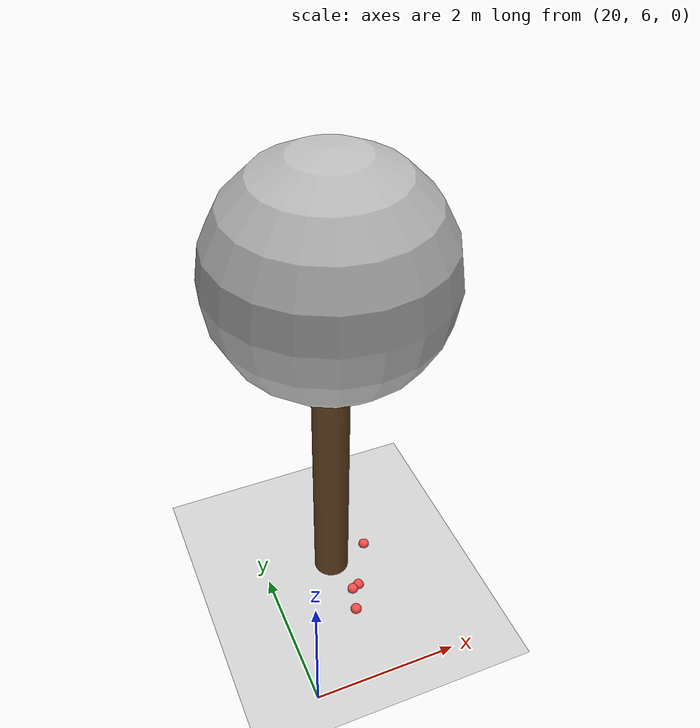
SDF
<sdf version="1.7">
 <world name="default">
  <model name="ground_plane">
   <static>1</static>
   <link name="link">
    <collision name="collision">
     <geometry><plane><normal>0 0 1</normal><size>100 100</size></plane></geometry>
     <surface>
      <contact><collide_bitmask>65535</collide_bitmask></contact>
      <friction><ode><mu>100</mu><mu2>50</mu2></ode></friction>
     </surface>
    </collision>
    <visual name="visual">
     <cast_shadows>0</cast_shadows>
     <geometry><plane><normal>0 0 1</normal><size>100 100</size></plane></geometry>
     <material>
      <script><uri>file://media/materials/scripts/gazebo.material</uri><name>Gazebo/Grey</name></script>
     </material>
    </visual>
   </link>
  </model>
  <model name="tree_simple_75">
   <static>1</static>
   <link name="link">
    <pose>0 0 0.1 0 -0 0</pose>
    <inertial>
     <mass>666</mass>
     <inertia>
      <ixx>0.0861167</ixx>
      <ixy>0</ixy>
      <ixz>0</ixz>
      <iyy>0.0861167</iyy>
      <iyz>0</iyz>
      <izz>0.0861167</izz>
     </inertia>
    </inertial>
    <collision name="collision_trunk">
     <pose>0 0 2 0 -0 0</pose>
     <geometry><cylinder><radius>0.25</radius><length>4</length></cylinder></geometry>
     <surface>
      <contact>
       <poissons_ratio>0.347</poissons_ratio>
       <elastic_modulus>8.8e+09</elastic_modulus>
       <ode><kp>100000</kp><kd>100</kd><max_vel>100</max_vel><min_depth>0.001</min_depth></ode>
      </contact>
      <friction>
       <torsional>
        <coefficient>1</coefficient>
        <use_patch_radius>0</use_patch_radius>
        <surface_radius>0.01</surface_radius>
       </torsional>
      </friction>
     </surface>
    </collision>
    <collision name="collision_treetop">
     <pose>0 0 5.2 0 -0 0</pose>
     <geometry><sphere><radius>1.5</radius></sphere></geometry>
     <surface>
      <contact>
       <poissons_ratio>0.347</poissons_ratio>
       <elastic_modulus>8.8e+09</elastic_modulus>
       <ode><kp>100000</kp><kd>100</kd><max_vel>100</max_vel><min_depth>0.001</min_depth></ode>
      </contact>
      <friction>
       <torsional>
        <coefficient>1</coefficient>
        <use_patch_radius>0</use_patch_radius>
        <surface_radius>0.01</surface_radius>
       </torsional>
      </friction>
     </surface>
    </collision>
    <visual name="trunk">
     <pose>0 0 2 0 -0 0</pose>
     <geometry><cylinder><radius>0.25</radius><length>4</length></cylinder></geometry>
     <material>
      <script>
       <uri>model://tree_simple/scripts</uri>
       <uri>model://tree_simple/materials/textures</uri>
       <name>TreeSimple/Trunk</name>
      </script>
     </material>
    </visual>
    <visual name="treetop">
     <pose>0 0 5.2 0 -0 0</pose>
     <geometry><sphere><radius>1.5</radius></sphere></geometry>
     <material>
      <script>
       <uri>model://tree_simple/scripts</uri>
       <uri>model://tree_simple/materials/textures</uri>
       <name>TreeSimple/Treetop</name>
      </script>
     </material>
    </visual>
   </link>
   <pose>21 8 -0.1 0 -0 0</pose>
  </model>
  <model name="seed_red_300">
   <link name="link">
    <inertial>
     <mass>1</mass>
     <inertia><ixx>0.1</ixx><ixy>0</ixy><ixz>0</ixz><iyy>0.1</iyy><iyz>0</iyz><izz>0.1</izz></inertia>
    </inertial>
    <visual name="visual">
     <geometry><sphere><radius>0.08</radius></sphere></geometry>
     <material>
      <script><name>Gazebo/Grey</name><uri>file://media/materials/scripts/gazebo.material</uri></script>
      <shader type="pixel"><normal_map>__default__</normal_map></shader>
      <ambient>1 0.3 0.3 1</ambient>
      <diffuse>0.7 0.7 0.7 1</diffuse>
      <specular>0.01 0.01 0.01 1</specular>
      <emissive>0 0 0 1</emissive>
     </material>
    </visual>
    <collision name="collision">
     <geometry><sphere><radius>0.0005</radius></sphere></geometry>
     <surface>
      <friction>
       <ode><mu>1</mu><mu2>1</mu2><fdir1>0 0 0</fdir1><slip1>0</slip1><slip2>0</slip2></ode>
       <torsional>
        <coefficient>1</coefficient>
        <patch_radius>0</patch_radius>
        <surface_radius>0</surface_radius>
        <use_patch_radius>1</use_patch_radius>
        <ode><slip>0</slip></ode>
       </torsional>
      </friction>
      <bounce><restitution_coefficient>0</restitution_coefficient><threshold>1e+06</threshold></bounce>
      <contact>
       <collide_without_contact>0</collide_without_contact>
       <collide_without_contact_bitmask>1</collide_without_contact_bitmask>
       <collide_bitmask>1</collide_bitmask>
       <ode>
        <soft_cfm>0</soft_cfm>
        <soft_erp>0.2</soft_erp>
        <kp>1e+13</kp>
        <kd>1</kd>
        <max_vel>0.01</max_vel>
        <min_depth>0</min_depth>
       </ode>
       <bullet>
        <split_impulse>1</split_impulse>
        <split_impulse_penetration_threshold>-0.01</split_impulse_penetration_threshold>
        <soft_cfm>0</soft_cfm>
        <soft_erp>0.2</soft_erp>
        <kp>1e+13</kp>
        <kd>1</kd>
       </bullet>
      </contact>
     </surface>
    </collision>
   </link>
   <static>0</static>
   <pose>21.2143 7.4614 0.0005 0 -0 0</pose>
  </model>
  <model name="seed_red_301">
   <link name="link">
    <inertial>
     <mass>1</mass>
     <inertia><ixx>0.1</ixx><ixy>0</ixy><ixz>0</ixz><iyy>0.1</iyy><iyz>0</iyz><izz>0.1</izz></inertia>
    </inertial>
    <visual name="visual">
     <geometry><sphere><radius>0.08</radius></sphere></geometry>
     <material>
      <script><name>Gazebo/Grey</name><uri>file://media/materials/scripts/gazebo.material</uri></script>
      <shader type="pixel"><normal_map>__default__</normal_map></shader>
      <ambient>1 0.3 0.3 1</ambient>
      <diffuse>0.7 0.7 0.7 1</diffuse>
      <specular>0.01 0.01 0.01 1</specular>
      <emissive>0 0 0 1</emissive>
     </material>
    </visual>
    <collision name="collision">
     <geometry><sphere><radius>0.0005</radius></sphere></geometry>
     <surface>
      <friction>
       <ode><mu>1</mu><mu2>1</mu2><fdir1>0 0 0</fdir1><slip1>0</slip1><slip2>0</slip2></ode>
       <torsional>
        <coefficient>1</coefficient>
        <patch_radius>0</patch_radius>
        <surface_radius>0</surface_radius>
        <use_patch_radius>1</use_patch_radius>
        <ode><slip>0</slip></ode>
       </torsional>
      </friction>
      <bounce><restitution_coefficient>0</restitution_coefficient><threshold>1e+06</threshold></bounce>
      <contact>
       <collide_without_contact>0</collide_without_contact>
       <collide_without_contact_bitmask>1</collide_without_contact_bitmask>
       <collide_bitmask>1</collide_bitmask>
       <ode>
        <soft_cfm>0</soft_cfm>
        <soft_erp>0.2</soft_erp>
        <kp>1e+13</kp>
        <kd>1</kd>
        <max_vel>0.01</max_vel>
        <min_depth>0</min_depth>
       </ode>
       <bullet>
        <split_impulse>1</split_impulse>
        <split_impulse_penetration_threshold>-0.01</split_impulse_penetration_threshold>
        <soft_cfm>0</soft_cfm>
        <soft_erp>0.2</soft_erp>
        <kp>1e+13</kp>
        <kd>1</kd>
       </bullet>
      </contact>
     </surface>
    </collision>
   </link>
   <static>0</static>
   <pose>21.0354 8.36111 0.0005 0 -0 0</pose>
  </model>
  <model name="seed_red_303">
   <link name="link">
    <inertial>
     <mass>1</mass>
     <inertia><ixx>0.1</ixx><ixy>0</ixy><ixz>0</ixz><iyy>0.1</iyy><iyz>0</iyz><izz>0.1</izz></inertia>
    </inertial>
    <visual name="visual">
     <geometry><sphere><radius>0.08</radius></sphere></geometry>
     <material>
      <script><name>Gazebo/Grey</name><uri>file://media/materials/scripts/gazebo.material</uri></script>
      <shader type="pixel"><normal_map>__default__</normal_map></shader>
      <ambient>1 0.3 0.3 1</ambient>
      <diffuse>0.7 0.7 0.7 1</diffuse>
      <specular>0.01 0.01 0.01 1</specular>
      <emissive>0 0 0 1</emissive>
     </material>
    </visual>
    <collision name="collision">
     <geometry><sphere><radius>0.0005</radius></sphere></geometry>
     <surface>
      <friction>
       <ode><mu>1</mu><mu2>1</mu2><fdir1>0 0 0</fdir1><slip1>0</slip1><slip2>0</slip2></ode>
       <torsional>
        <coefficient>1</coefficient>
        <patch_radius>0</patch_radius>
        <surface_radius>0</surface_radius>
        <use_patch_radius>1</use_patch_radius>
        <ode><slip>0</slip></ode>
       </torsional>
      </friction>
      <bounce><restitution_coefficient>0</restitution_coefficient><threshold>1e+06</threshold></bounce>
      <contact>
       <collide_without_contact>0</collide_without_contact>
       <collide_without_contact_bitmask>1</collide_without_contact_bitmask>
       <collide_bitmask>1</collide_bitmask>
       <ode>
        <soft_cfm>0</soft_cfm>
        <soft_erp>0.2</soft_erp>
        <kp>1e+13</kp>
        <kd>1</kd>
        <max_vel>0.01</max_vel>
        <min_depth>0</min_depth>
       </ode>
       <bullet>
        <split_impulse>1</split_impulse>
        <split_impulse_penetration_threshold>-0.01</split_impulse_penetration_threshold>
        <soft_cfm>0</soft_cfm>
        <soft_erp>0.2</soft_erp>
        <kp>1e+13</kp>
        <kd>1</kd>
       </bullet>
      </contact>
     </surface>
    </collision>
   </link>
   <static>0</static>
   <pose>21.109 7.42293 0.0005 0 -0 0</pose>
  </model>
  <model name="seed_red_304">
   <link name="link">
    <inertial>
     <mass>1</mass>
     <inertia><ixx>0.1</ixx><ixy>0</ixy><ixz>0</ixz><iyy>0.1</iyy><iyz>0</iyz><izz>0.1</izz></inertia>
    </inertial>
    <visual name="visual">
     <geometry><sphere><radius>0.08</radius></sphere></geometry>
     <material>
      <script><name>Gazebo/Grey</name><uri>file://media/materials/scripts/gazebo.material</uri></script>
      <shader type="pixel"><normal_map>__default__</normal_map></shader>
      <ambient>1 0.3 0.3 1</ambient>
      <diffuse>0.7 0.7 0.7 1</diffuse>
      <specular>0.01 0.01 0.01 1</specular>
      <emissive>0 0 0 1</emissive>
     </material>
    </visual>
    <collision name="collision">
     <geometry><sphere><radius>0.0005</radius></sphere></geometry>
     <surface>
      <friction>
       <ode><mu>1</mu><mu2>1</mu2><fdir1>0 0 0</fdir1><slip1>0</slip1><slip2>0</slip2></ode>
       <torsional>
        <coefficient>1</coefficient>
        <patch_radius>0</patch_radius>
        <surface_radius>0</surface_radius>
        <use_patch_radius>1</use_patch_radius>
        <ode><slip>0</slip></ode>
       </torsional>
      </friction>
      <bounce><restitution_coefficient>0</restitution_coefficient><threshold>1e+06</threshold></bounce>
      <contact>
       <collide_without_contact>0</collide_without_contact>
       <collide_without_contact_bitmask>1</collide_without_contact_bitmask>
       <collide_bitmask>1</collide_bitmask>
       <ode>
        <soft_cfm>0</soft_cfm>
        <soft_erp>0.2</soft_erp>
        <kp>1e+13</kp>
        <kd>1</kd>
        <max_vel>0.01</max_vel>
        <min_depth>0</min_depth>
       </ode>
       <bullet>
        <split_impulse>1</split_impulse>
        <split_impulse_penetration_threshold>-0.01</split_impulse_penetration_threshold>
        <soft_cfm>0</soft_cfm>
        <soft_erp>0.2</soft_erp>
        <kp>1e+13</kp>
        <kd>1</kd>
       </bullet>
      </contact>
     </surface>
    </collision>
   </link>
   <static>0</static>
   <pose>21.5932 8.12896 0.0005 0 -0 0</pose>
  </model>
  <model name="seed_red_307">
   <link name="link">
    <inertial>
     <mass>1</mass>
     <inertia><ixx>0.1</ixx><ixy>0</ixy><ixz>0</ixz><iyy>0.1</iyy><iyz>0</iyz><izz>0.1</izz></inertia>
    </inertial>
    <visual name="visual">
     <geometry><sphere><radius>0.08</radius></sphere></geometry>
     <material>
      <script><name>Gazebo/Grey</name><uri>file://media/materials/scripts/gazebo.material</uri></script>
      <shader type="pixel"><normal_map>__default__</normal_map></shader>
      <ambient>1 0.3 0.3 1</ambient>
      <diffuse>0.7 0.7 0.7 1</diffuse>
      <specular>0.01 0.01 0.01 1</specular>
      <emissive>0 0 0 1</emissive>
     </material>
    </visual>
    <collision name="collision">
     <geometry><sphere><radius>0.0005</radius></sphere></geometry>
     <surface>
      <friction>
       <ode><mu>1</mu><mu2>1</mu2><fdir1>0 0 0</fdir1><slip1>0</slip1><slip2>0</slip2></ode>
       <torsional>
        <coefficient>1</coefficient>
        <patch_radius>0</patch_radius>
        <surface_radius>0</surface_radius>
        <use_patch_radius>1</use_patch_radius>
        <ode><slip>0</slip></ode>
       </torsional>
      </friction>
      <bounce><restitution_coefficient>0</restitution_coefficient><threshold>1e+06</threshold></bounce>
      <contact>
       <collide_without_contact>0</collide_without_contact>
       <collide_without_contact_bitmask>1</collide_without_contact_bitmask>
       <collide_bitmask>1</collide_bitmask>
       <ode>
        <soft_cfm>0</soft_cfm>
        <soft_erp>0.2</soft_erp>
        <kp>1e+13</kp>
        <kd>1</kd>
        <max_vel>0.01</max_vel>
        <min_depth>0</min_depth>
       </ode>
       <bullet>
        <split_impulse>1</split_impulse>
        <split_impulse_penetration_threshold>-0.01</split_impulse_penetration_threshold>
        <soft_cfm>0</soft_cfm>
        <soft_erp>0.2</soft_erp>
        <kp>1e+13</kp>
        <kd>1</kd>
       </bullet>
      </contact>
     </surface>
    </collision>
   </link>
   <static>0</static>
   <pose>21.0161 7.08188 0.0005 0 -0 0</pose>
  </model>
 </world>
</sdf>
